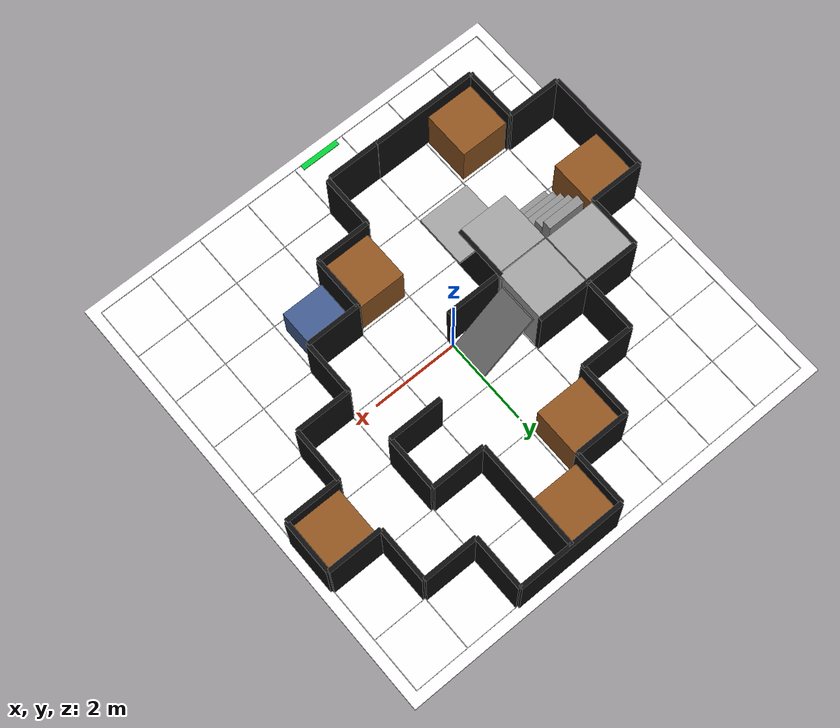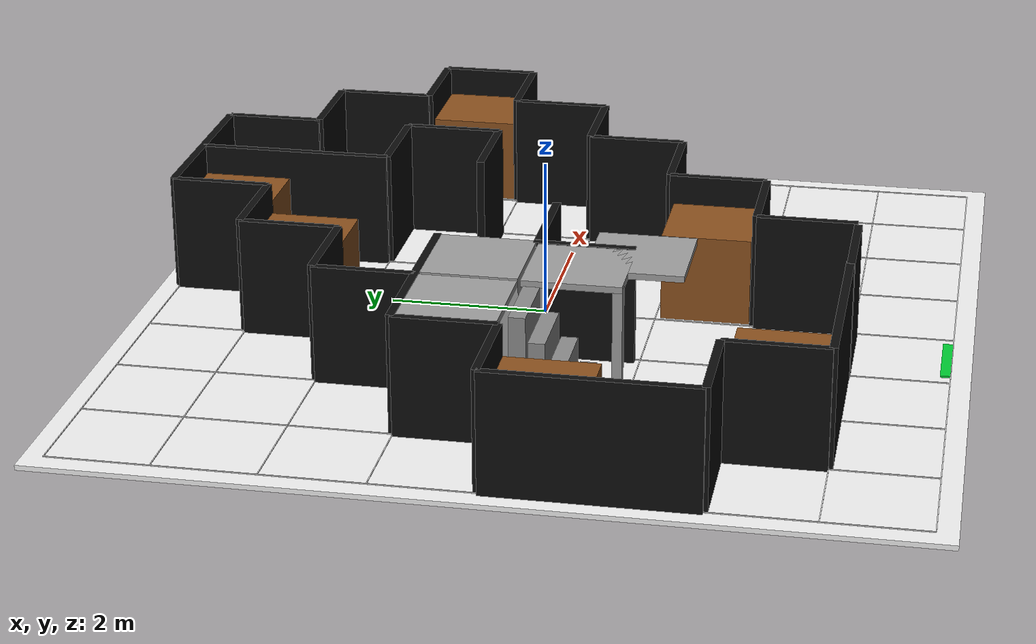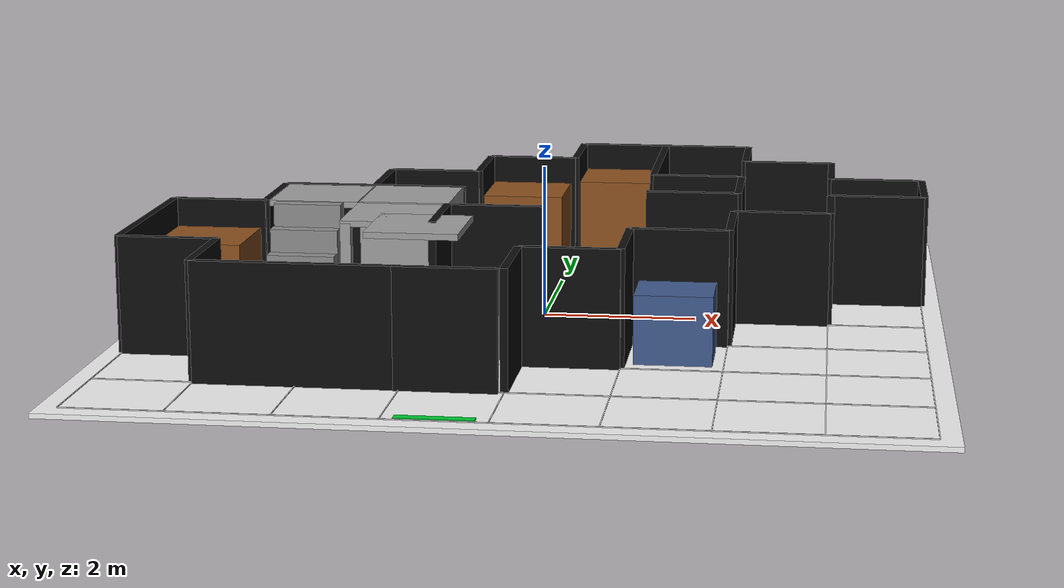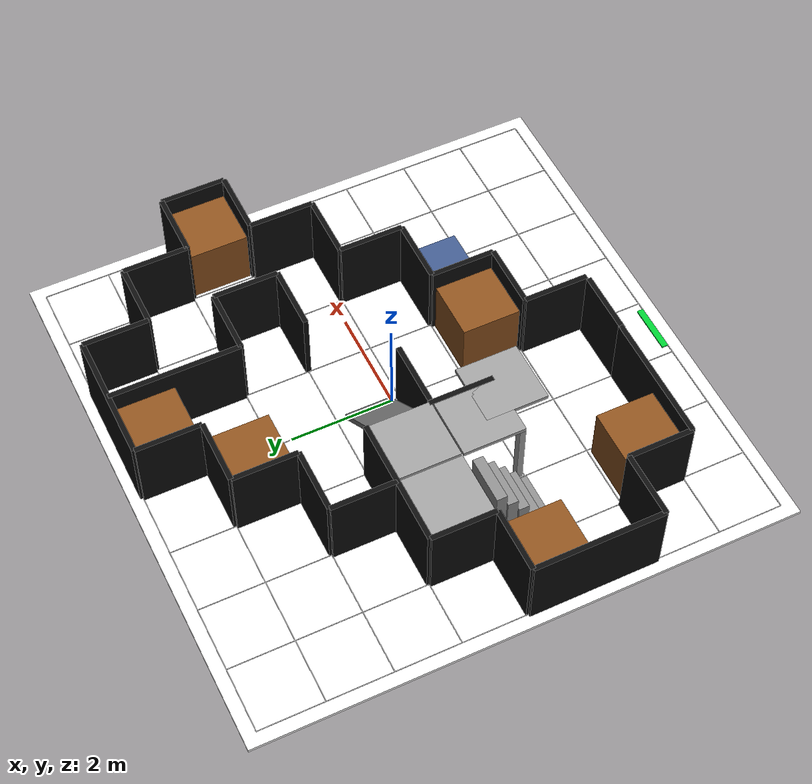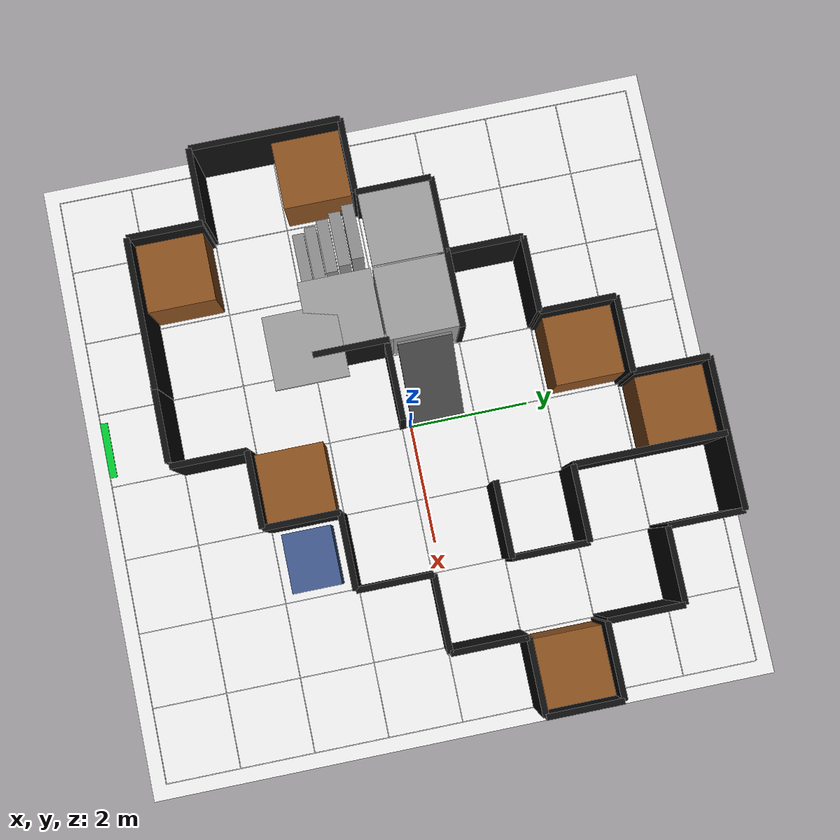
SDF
<sdf version="1.7">
 <world name="image_map_world">
  <model name="floor">
   <static>1</static>
   <pose>0.000000 -0.150000 -0.03125 0 -0 0</pose>
   <link name="link">
    <collision name="floor_collision"><geometry><box><size>10.5 10.5 0.0625</size></box></geometry></collision>
    <visual name="floor_visual">
     <geometry><box><size>10.5 10.5 0.0625</size></box></geometry>
     <material><ambient>0.95 0.95 0.95 1</ambient><diffuse>0.95 0.95 0.95 1</diffuse></material>
    </visual>
   </link>
  </model>
  <model name="grid_v_0">
   <static>1</static>
   <pose>-5.000000 -0.150000 0.0075 0 -0 0</pose>
   <link name="link">
    <visual name="grid_v_0_visual">
     <geometry><box><size>0.0125 10 0.0125</size></box></geometry>
     <material><ambient>0.82 0.82 0.82 1</ambient><diffuse>0.82 0.82 0.82 1</diffuse></material>
    </visual>
   </link>
  </model>
  <model name="grid_v_1">
   <static>1</static>
   <pose>-3.750000 -0.150000 0.0075 0 -0 0</pose>
   <link name="link">
    <visual name="grid_v_1_visual">
     <geometry><box><size>0.0125 10 0.0125</size></box></geometry>
     <material><ambient>0.82 0.82 0.82 1</ambient><diffuse>0.82 0.82 0.82 1</diffuse></material>
    </visual>
   </link>
  </model>
  <model name="grid_v_2">
   <static>1</static>
   <pose>-2.500000 -0.150000 0.0075 0 -0 0</pose>
   <link name="link">
    <visual name="grid_v_2_visual">
     <geometry><box><size>0.0125 10 0.0125</size></box></geometry>
     <material><ambient>0.82 0.82 0.82 1</ambient><diffuse>0.82 0.82 0.82 1</diffuse></material>
    </visual>
   </link>
  </model>
  <model name="grid_v_3">
   <static>1</static>
   <pose>-1.250000 -0.150000 0.0075 0 -0 0</pose>
   <link name="link">
    <visual name="grid_v_3_visual">
     <geometry><box><size>0.0125 10 0.0125</size></box></geometry>
     <material><ambient>0.82 0.82 0.82 1</ambient><diffuse>0.82 0.82 0.82 1</diffuse></material>
    </visual>
   </link>
  </model>
  <model name="grid_v_4">
   <static>1</static>
   <pose>0.000000 -0.150000 0.0075 0 -0 0</pose>
   <link name="link">
    <visual name="grid_v_4_visual">
     <geometry><box><size>0.0125 10 0.0125</size></box></geometry>
     <material><ambient>0.82 0.82 0.82 1</ambient><diffuse>0.82 0.82 0.82 1</diffuse></material>
    </visual>
   </link>
  </model>
  <model name="grid_v_5">
   <static>1</static>
   <pose>1.250000 -0.150000 0.0075 0 -0 0</pose>
   <link name="link">
    <visual name="grid_v_5_visual">
     <geometry><box><size>0.0125 10 0.0125</size></box></geometry>
     <material><ambient>0.82 0.82 0.82 1</ambient><diffuse>0.82 0.82 0.82 1</diffuse></material>
    </visual>
   </link>
  </model>
  <model name="grid_v_6">
   <static>1</static>
   <pose>2.500000 -0.150000 0.0075 0 -0 0</pose>
   <link name="link">
    <visual name="grid_v_6_visual">
     <geometry><box><size>0.0125 10 0.0125</size></box></geometry>
     <material><ambient>0.82 0.82 0.82 1</ambient><diffuse>0.82 0.82 0.82 1</diffuse></material>
    </visual>
   </link>
  </model>
  <model name="grid_v_7">
   <static>1</static>
   <pose>3.750000 -0.150000 0.0075 0 -0 0</pose>
   <link name="link">
    <visual name="grid_v_7_visual">
     <geometry><box><size>0.0125 10 0.0125</size></box></geometry>
     <material><ambient>0.82 0.82 0.82 1</ambient><diffuse>0.82 0.82 0.82 1</diffuse></material>
    </visual>
   </link>
  </model>
  <model name="grid_v_8">
   <static>1</static>
   <pose>5.000000 -0.150000 0.0075 0 -0 0</pose>
   <link name="link">
    <visual name="grid_v_8_visual">
     <geometry><box><size>0.0125 10 0.0125</size></box></geometry>
     <material><ambient>0.82 0.82 0.82 1</ambient><diffuse>0.82 0.82 0.82 1</diffuse></material>
    </visual>
   </link>
  </model>
  <model name="grid_h_0">
   <static>1</static>
   <pose>0.000000 4.850000 0.0075 0 -0 0</pose>
   <link name="link">
    <visual name="grid_h_0_visual">
     <geometry><box><size>10 0.0125 0.0125</size></box></geometry>
     <material><ambient>0.82 0.82 0.82 1</ambient><diffuse>0.82 0.82 0.82 1</diffuse></material>
    </visual>
   </link>
  </model>
  <model name="grid_h_1">
   <static>1</static>
   <pose>0.000000 3.600000 0.0075 0 -0 0</pose>
   <link name="link">
    <visual name="grid_h_1_visual">
     <geometry><box><size>10 0.0125 0.0125</size></box></geometry>
     <material><ambient>0.82 0.82 0.82 1</ambient><diffuse>0.82 0.82 0.82 1</diffuse></material>
    </visual>
   </link>
  </model>
  <model name="grid_h_2">
   <static>1</static>
   <pose>0.000000 2.350000 0.0075 0 -0 0</pose>
   <link name="link">
    <visual name="grid_h_2_visual">
     <geometry><box><size>10 0.0125 0.0125</size></box></geometry>
     <material><ambient>0.82 0.82 0.82 1</ambient><diffuse>0.82 0.82 0.82 1</diffuse></material>
    </visual>
   </link>
  </model>
  <model name="grid_h_3">
   <static>1</static>
   <pose>0.000000 1.100000 0.0075 0 -0 0</pose>
   <link name="link">
    <visual name="grid_h_3_visual">
     <geometry><box><size>10 0.0125 0.0125</size></box></geometry>
     <material><ambient>0.82 0.82 0.82 1</ambient><diffuse>0.82 0.82 0.82 1</diffuse></material>
    </visual>
   </link>
  </model>
  <model name="grid_h_4">
   <static>1</static>
   <pose>0.000000 -0.150000 0.0075 0 -0 0</pose>
   <link name="link">
    <visual name="grid_h_4_visual">
     <geometry><box><size>10 0.0125 0.0125</size></box></geometry>
     <material><ambient>0.82 0.82 0.82 1</ambient><diffuse>0.82 0.82 0.82 1</diffuse></material>
    </visual>
   </link>
  </model>
  <model name="grid_h_5">
   <static>1</static>
   <pose>0.000000 -1.400000 0.0075 0 -0 0</pose>
   <link name="link">
    <visual name="grid_h_5_visual">
     <geometry><box><size>10 0.0125 0.0125</size></box></geometry>
     <material><ambient>0.82 0.82 0.82 1</ambient><diffuse>0.82 0.82 0.82 1</diffuse></material>
    </visual>
   </link>
  </model>
  <model name="grid_h_6">
   <static>1</static>
   <pose>0.000000 -2.650000 0.0075 0 -0 0</pose>
   <link name="link">
    <visual name="grid_h_6_visual">
     <geometry><box><size>10 0.0125 0.0125</size></box></geometry>
     <material><ambient>0.82 0.82 0.82 1</ambient><diffuse>0.82 0.82 0.82 1</diffuse></material>
    </visual>
   </link>
  </model>
  <model name="grid_h_7">
   <static>1</static>
   <pose>0.000000 -3.900000 0.0075 0 -0 0</pose>
   <link name="link">
    <visual name="grid_h_7_visual">
     <geometry><box><size>10 0.0125 0.0125</size></box></geometry>
     <material><ambient>0.82 0.82 0.82 1</ambient><diffuse>0.82 0.82 0.82 1</diffuse></material>
    </visual>
   </link>
  </model>
  <model name="grid_h_8">
   <static>1</static>
   <pose>0.000000 -5.150000 0.0075 0 -0 0</pose>
   <link name="link">
    <visual name="grid_h_8_visual">
     <geometry><box><size>10 0.0125 0.0125</size></box></geometry>
     <material><ambient>0.82 0.82 0.82 1</ambient><diffuse>0.82 0.82 0.82 1</diffuse></material>
    </visual>
   </link>
  </model>
  <model name="wall_h_01">
   <static>1</static>
   <pose>1.250000 4.850000 0.75 0 -0 0</pose>
   <link name="link">
    <collision name="wall_h_01_collision"><geometry><box><size>2.5 0.1 1.5</size></box></geometry></collision>
    <visual name="wall_h_01_visual">
     <geometry><box><size>2.5 0.1 1.5</size></box></geometry>
     <material><ambient>0.05 0.05 0.05 1</ambient><diffuse>0.05 0.05 0.05 1</diffuse></material>
    </visual>
   </link>
  </model>
  <model name="wall_h_02">
   <static>1</static>
   <pose>-0.625000 3.600000 0.75 0 -0 0</pose>
   <link name="link">
    <collision name="wall_h_02_collision"><geometry><box><size>1.25 0.1 1.5</size></box></geometry></collision>
    <visual name="wall_h_02_visual">
     <geometry><box><size>1.25 0.1 1.5</size></box></geometry>
     <material><ambient>0.05 0.05 0.05 1</ambient><diffuse>0.05 0.05 0.05 1</diffuse></material>
    </visual>
   </link>
  </model>
  <model name="wall_h_03">
   <static>1</static>
   <pose>3.125000 3.600000 0.75 0 -0 0</pose>
   <link name="link">
    <collision name="wall_h_03_collision"><geometry><box><size>1.25 0.1 1.5</size></box></geometry></collision>
    <visual name="wall_h_03_visual">
     <geometry><box><size>1.25 0.1 1.5</size></box></geometry>
     <material><ambient>0.05 0.05 0.05 1</ambient><diffuse>0.05 0.05 0.05 1</diffuse></material>
    </visual>
   </link>
  </model>
  <model name="wall_h_04">
   <static>1</static>
   <pose>-1.875000 2.350000 0.75 0 -0 0</pose>
   <link name="link">
    <collision name="wall_h_04_collision"><geometry><box><size>1.25 0.1 1.5</size></box></geometry></collision>
    <visual name="wall_h_04_visual">
     <geometry><box><size>1.25 0.1 1.5</size></box></geometry>
     <material><ambient>0.05 0.05 0.05 1</ambient><diffuse>0.05 0.05 0.05 1</diffuse></material>
    </visual>
   </link>
  </model>
  <model name="wall_h_05">
   <static>1</static>
   <pose>1.875000 2.350000 0.75 0 -0 0</pose>
   <link name="link">
    <collision name="wall_h_05_collision"><geometry><box><size>1.25 0.1 1.5</size></box></geometry></collision>
    <visual name="wall_h_05_visual">
     <geometry><box><size>1.25 0.1 1.5</size></box></geometry>
     <material><ambient>0.05 0.05 0.05 1</ambient><diffuse>0.05 0.05 0.05 1</diffuse></material>
    </visual>
   </link>
  </model>
  <model name="wall_h_06">
   <static>1</static>
   <pose>4.375000 2.350000 0.75 0 -0 0</pose>
   <link name="link">
    <collision name="wall_h_06_collision"><geometry><box><size>1.25 0.1 1.5</size></box></geometry></collision>
    <visual name="wall_h_06_visual">
     <geometry><box><size>1.25 0.1 1.5</size></box></geometry>
     <material><ambient>0.05 0.05 0.05 1</ambient><diffuse>0.05 0.05 0.05 1</diffuse></material>
    </visual>
   </link>
  </model>
  <model name="wall_h_07">
   <static>1</static>
   <pose>-2.500000 1.100000 0.75 0 -0 0</pose>
   <link name="link">
    <collision name="wall_h_07_collision"><geometry><box><size>2.5 0.1 1.5</size></box></geometry></collision>
    <visual name="wall_h_07_visual">
     <geometry><box><size>2.5 0.1 1.5</size></box></geometry>
     <material><ambient>0.05 0.05 0.05 1</ambient><diffuse>0.05 0.05 0.05 1</diffuse></material>
    </visual>
   </link>
  </model>
  <model name="wall_h_08">
   <static>1</static>
   <pose>1.875000 1.100000 0.75 0 -0 0</pose>
   <link name="link">
    <collision name="wall_h_08_collision"><geometry><box><size>1.25 0.1 1.5</size></box></geometry></collision>
    <visual name="wall_h_08_visual">
     <geometry><box><size>1.25 0.1 1.5</size></box></geometry>
     <material><ambient>0.05 0.05 0.05 1</ambient><diffuse>0.05 0.05 0.05 1</diffuse></material>
    </visual>
   </link>
  </model>
  <model name="wall_h_09">
   <static>1</static>
   <pose>4.375000 1.100000 0.75 0 -0 0</pose>
   <link name="link">
    <collision name="wall_h_09_collision"><geometry><box><size>1.25 0.1 1.5</size></box></geometry></collision>
    <visual name="wall_h_09_visual">
     <geometry><box><size>1.25 0.1 1.5</size></box></geometry>
     <material><ambient>0.05 0.05 0.05 1</ambient><diffuse>0.05 0.05 0.05 1</diffuse></material>
    </visual>
   </link>
  </model>
  <model name="wall_h_10">
   <static>1</static>
   <pose>-4.375000 -0.150000 0.75 0 -0 0</pose>
   <link name="link">
    <collision name="wall_h_10_collision"><geometry><box><size>1.25 0.1 1.5</size></box></geometry></collision>
    <visual name="wall_h_10_visual">
     <geometry><box><size>1.25 0.1 1.5</size></box></geometry>
     <material><ambient>0.05 0.05 0.05 1</ambient><diffuse>0.05 0.05 0.05 1</diffuse></material>
    </visual>
   </link>
  </model>
  <model name="wall_h_11">
   <static>1</static>
   <pose>3.125000 -0.150000 0.75 0 -0 0</pose>
   <link name="link">
    <collision name="wall_h_11_collision"><geometry><box><size>1.25 0.1 1.5</size></box></geometry></collision>
    <visual name="wall_h_11_visual">
     <geometry><box><size>1.25 0.1 1.5</size></box></geometry>
     <material><ambient>0.05 0.05 0.05 1</ambient><diffuse>0.05 0.05 0.05 1</diffuse></material>
    </visual>
   </link>
  </model>
  <model name="wall_h_12">
   <static>1</static>
   <pose>1.875000 -1.400000 0.75 0 -0 0</pose>
   <link name="link">
    <collision name="wall_h_12_collision"><geometry><box><size>1.25 0.1 1.5</size></box></geometry></collision>
    <visual name="wall_h_12_visual">
     <geometry><box><size>1.25 0.1 1.5</size></box></geometry>
     <material><ambient>0.05 0.05 0.05 1</ambient><diffuse>0.05 0.05 0.05 1</diffuse></material>
    </visual>
   </link>
  </model>
  <model name="wall_h_13">
   <static>1</static>
   <pose>-4.375000 -2.650000 0.75 0 -0 0</pose>
   <link name="link">
    <collision name="wall_h_13_collision"><geometry><box><size>1.25 0.1 1.5</size></box></geometry></collision>
    <visual name="wall_h_13_visual">
     <geometry><box><size>1.25 0.1 1.5</size></box></geometry>
     <material><ambient>0.05 0.05 0.05 1</ambient><diffuse>0.05 0.05 0.05 1</diffuse></material>
    </visual>
   </link>
  </model>
  <model name="wall_h_14">
   <static>1</static>
   <pose>0.625000 -2.650000 0.75 0 -0 0</pose>
   <link name="link">
    <collision name="wall_h_14_collision"><geometry><box><size>1.25 0.1 1.5</size></box></geometry></collision>
    <visual name="wall_h_14_visual">
     <geometry><box><size>1.25 0.1 1.5</size></box></geometry>
     <material><ambient>0.05 0.05 0.05 1</ambient><diffuse>0.05 0.05 0.05 1</diffuse></material>
    </visual>
   </link>
  </model>
  <model name="wall_h_15">
   <static>1</static>
   <pose>-2.500000 -3.900000 0.75 0 -0 0</pose>
   <link name="link">
    <collision name="wall_h_15_collision"><geometry><box><size>2.5 0.1 1.5</size></box></geometry></collision>
    <visual name="wall_h_15_visual">
     <geometry><box><size>2.5 0.1 1.5</size></box></geometry>
     <material><ambient>0.05 0.05 0.05 1</ambient><diffuse>0.05 0.05 0.05 1</diffuse></material>
    </visual>
   </link>
  </model>
  <model name="wall_v_01">
   <static>1</static>
   <pose>0.000000 4.225000 0.75 0 -0 0</pose>
   <link name="link">
    <collision name="wall_v_01_collision"><geometry><box><size>0.1 1.25 1.5</size></box></geometry></collision>
    <visual name="wall_v_01_visual">
     <geometry><box><size>0.1 1.25 1.5</size></box></geometry>
     <material><ambient>0.05 0.05 0.05 1</ambient><diffuse>0.05 0.05 0.05 1</diffuse></material>
    </visual>
   </link>
  </model>
  <model name="wall_v_02">
   <static>1</static>
   <pose>1.250000 3.600000 0.75 0 -0 0</pose>
   <link name="link">
    <collision name="wall_v_02_collision"><geometry><box><size>0.1 2.5 1.5</size></box></geometry></collision>
    <visual name="wall_v_02_visual">
     <geometry><box><size>0.1 2.5 1.5</size></box></geometry>
     <material><ambient>0.05 0.05 0.05 1</ambient><diffuse>0.05 0.05 0.05 1</diffuse></material>
    </visual>
   </link>
  </model>
  <model name="wall_v_03">
   <static>1</static>
   <pose>2.500000 4.225000 0.75 0 -0 0</pose>
   <link name="link">
    <collision name="wall_v_03_collision"><geometry><box><size>0.1 1.25 1.5</size></box></geometry></collision>
    <visual name="wall_v_03_visual">
     <geometry><box><size>0.1 1.25 1.5</size></box></geometry>
     <material><ambient>0.05 0.05 0.05 1</ambient><diffuse>0.05 0.05 0.05 1</diffuse></material>
    </visual>
   </link>
  </model>
  <model name="wall_v_04">
   <static>1</static>
   <pose>-1.250000 2.975000 0.75 0 -0 0</pose>
   <link name="link">
    <collision name="wall_v_04_collision"><geometry><box><size>0.1 1.25 1.5</size></box></geometry></collision>
    <visual name="wall_v_04_visual">
     <geometry><box><size>0.1 1.25 1.5</size></box></geometry>
     <material><ambient>0.05 0.05 0.05 1</ambient><diffuse>0.05 0.05 0.05 1</diffuse></material>
    </visual>
   </link>
  </model>
  <model name="wall_v_05">
   <static>1</static>
   <pose>3.750000 2.975000 0.75 0 -0 0</pose>
   <link name="link">
    <collision name="wall_v_05_collision"><geometry><box><size>0.1 1.25 1.5</size></box></geometry></collision>
    <visual name="wall_v_05_visual">
     <geometry><box><size>0.1 1.25 1.5</size></box></geometry>
     <material><ambient>0.05 0.05 0.05 1</ambient><diffuse>0.05 0.05 0.05 1</diffuse></material>
    </visual>
   </link>
  </model>
  <model name="wall_v_06">
   <static>1</static>
   <pose>3.750000 0.475000 0.75 0 -0 0</pose>
   <link name="link">
    <collision name="wall_v_06_collision"><geometry><box><size>0.1 1.25 1.5</size></box></geometry></collision>
    <visual name="wall_v_06_visual">
     <geometry><box><size>0.1 1.25 1.5</size></box></geometry>
     <material><ambient>0.05 0.05 0.05 1</ambient><diffuse>0.05 0.05 0.05 1</diffuse></material>
    </visual>
   </link>
  </model>
  <model name="wall_v_07">
   <static>1</static>
   <pose>5.000000 1.725000 0.75 0 -0 0</pose>
   <link name="link">
    <collision name="wall_v_07_collision"><geometry><box><size>0.1 1.25 1.5</size></box></geometry></collision>
    <visual name="wall_v_07_visual">
     <geometry><box><size>0.1 1.25 1.5</size></box></geometry>
     <material><ambient>0.05 0.05 0.05 1</ambient><diffuse>0.05 0.05 0.05 1</diffuse></material>
    </visual>
   </link>
  </model>
  <model name="wall_v_08">
   <static>1</static>
   <pose>-2.500000 1.725000 0.75 0 -0 0</pose>
   <link name="link">
    <collision name="wall_v_08_collision"><geometry><box><size>0.1 1.25 1.5</size></box></geometry></collision>
    <visual name="wall_v_08_visual">
     <geometry><box><size>0.1 1.25 1.5</size></box></geometry>
     <material><ambient>0.05 0.05 0.05 1</ambient><diffuse>0.05 0.05 0.05 1</diffuse></material>
    </visual>
   </link>
  </model>
  <model name="wall_v_09">
   <static>1</static>
   <pose>-5.000000 -1.400000 0.75 0 -0 0</pose>
   <link name="link">
    <collision name="wall_v_09_collision"><geometry><box><size>0.1 2.5 1.5</size></box></geometry></collision>
    <visual name="wall_v_09_visual">
     <geometry><box><size>0.1 2.5 1.5</size></box></geometry>
     <material><ambient>0.05 0.05 0.05 1</ambient><diffuse>0.05 0.05 0.05 1</diffuse></material>
    </visual>
   </link>
  </model>
  <model name="wall_v_10">
   <static>1</static>
   <pose>-3.750000 0.475000 0.75 0 -0 0</pose>
   <link name="link">
    <collision name="wall_v_10_collision"><geometry><box><size>0.1 1.25 1.5</size></box></geometry></collision>
    <visual name="wall_v_10_visual">
     <geometry><box><size>0.1 1.25 1.5</size></box></geometry>
     <material><ambient>0.05 0.05 0.05 1</ambient><diffuse>0.05 0.05 0.05 1</diffuse></material>
    </visual>
   </link>
  </model>
  <model name="wall_v_11">
   <static>1</static>
   <pose>2.500000 1.725000 0.75 0 -0 0</pose>
   <link name="link">
    <collision name="wall_v_11_collision"><geometry><box><size>0.1 1.25 1.5</size></box></geometry></collision>
    <visual name="wall_v_11_visual">
     <geometry><box><size>0.1 1.25 1.5</size></box></geometry>
     <material><ambient>0.05 0.05 0.05 1</ambient><diffuse>0.05 0.05 0.05 1</diffuse></material>
    </visual>
   </link>
  </model>
  <model name="wall_v_12">
   <static>1</static>
   <pose>2.500000 -0.775000 0.75 0 -0 0</pose>
   <link name="link">
    <collision name="wall_v_12_collision"><geometry><box><size>0.1 1.25 1.5</size></box></geometry></collision>
    <visual name="wall_v_12_visual">
     <geometry><box><size>0.1 1.25 1.5</size></box></geometry>
     <material><ambient>0.05 0.05 0.05 1</ambient><diffuse>0.05 0.05 0.05 1</diffuse></material>
    </visual>
   </link>
  </model>
  <model name="wall_v_13">
   <static>1</static>
   <pose>-3.750000 -3.275000 0.75 0 -0 0</pose>
   <link name="link">
    <collision name="wall_v_13_collision"><geometry><box><size>0.1 1.25 1.5</size></box></geometry></collision>
    <visual name="wall_v_13_visual">
     <geometry><box><size>0.1 1.25 1.5</size></box></geometry>
     <material><ambient>0.05 0.05 0.05 1</ambient><diffuse>0.05 0.05 0.05 1</diffuse></material>
    </visual>
   </link>
  </model>
  <model name="wall_v_14">
   <static>1</static>
   <pose>0.000000 -3.275000 0.75 0 -0 0</pose>
   <link name="link">
    <collision name="wall_v_14_collision"><geometry><box><size>0.1 1.25 1.5</size></box></geometry></collision>
    <visual name="wall_v_14_visual">
     <geometry><box><size>0.1 1.25 1.5</size></box></geometry>
     <material><ambient>0.05 0.05 0.05 1</ambient><diffuse>0.05 0.05 0.05 1</diffuse></material>
    </visual>
   </link>
  </model>
  <model name="wall_v_15">
   <static>1</static>
   <pose>1.250000 -2.025000 0.75 0 -0 0</pose>
   <link name="link">
    <collision name="wall_v_15_collision"><geometry><box><size>0.1 1.25 1.5</size></box></geometry></collision>
    <visual name="wall_v_15_visual">
     <geometry><box><size>0.1 1.25 1.5</size></box></geometry>
     <material><ambient>0.05 0.05 0.05 1</ambient><diffuse>0.05 0.05 0.05 1</diffuse></material>
    </visual>
   </link>
  </model>
  <model name="box_1">
   <static>1</static>
   <pose>0.625000 4.225000 0.5625 0 -0 0</pose>
   <link name="link">
    <collision name="box_1_collision"><geometry><box><size>1.125 1.125 1.125</size></box></geometry></collision>
    <visual name="box_1_visual">
     <geometry><box><size>1.125 1.125 1.125</size></box></geometry>
     <material><ambient>0.55 0.32 0.12 1</ambient><diffuse>0.55 0.32 0.12 1</diffuse></material>
    </visual>
   </link>
  </model>
  <model name="box_2">
   <static>1</static>
   <pose>-0.625000 2.975000 0.5625 0 -0 0</pose>
   <link name="link">
    <collision name="box_2_collision"><geometry><box><size>1.125 1.125 1.125</size></box></geometry></collision>
    <visual name="box_2_visual">
     <geometry><box><size>1.125 1.125 1.125</size></box></geometry>
     <material><ambient>0.55 0.32 0.12 1</ambient><diffuse>0.55 0.32 0.12 1</diffuse></material>
    </visual>
   </link>
  </model>
  <model name="box_3">
   <static>1</static>
   <pose>4.375000 1.725000 0.5625 0 -0 0</pose>
   <link name="link">
    <collision name="box_3_collision"><geometry><box><size>1.125 1.125 1.125</size></box></geometry></collision>
    <visual name="box_3_visual">
     <geometry><box><size>1.125 1.125 1.125</size></box></geometry>
     <material><ambient>0.55 0.32 0.12 1</ambient><diffuse>0.55 0.32 0.12 1</diffuse></material>
    </visual>
   </link>
  </model>
  <model name="box_4">
   <static>1</static>
   <pose>-4.375000 -0.775000 0.5625 0 -0 0</pose>
   <link name="link">
    <collision name="box_4_collision"><geometry><box><size>1.125 1.125 1.125</size></box></geometry></collision>
    <visual name="box_4_visual">
     <geometry><box><size>1.125 1.125 1.125</size></box></geometry>
     <material><ambient>0.55 0.32 0.12 1</ambient><diffuse>0.55 0.32 0.12 1</diffuse></material>
    </visual>
   </link>
  </model>
  <model name="box_5">
   <static>1</static>
   <pose>0.625000 -2.025000 0.5625 0 -0 0</pose>
   <link name="link">
    <collision name="box_5_collision"><geometry><box><size>1.125 1.125 1.125</size></box></geometry></collision>
    <visual name="box_5_visual">
     <geometry><box><size>1.125 1.125 1.125</size></box></geometry>
     <material><ambient>0.55 0.32 0.12 1</ambient><diffuse>0.55 0.32 0.12 1</diffuse></material>
    </visual>
   </link>
  </model>
  <model name="box_6">
   <static>1</static>
   <pose>-3.125000 -3.275000 0.5625 0 -0 0</pose>
   <link name="link">
    <collision name="box_6_collision"><geometry><box><size>1.125 1.125 1.125</size></box></geometry></collision>
    <visual name="box_6_visual">
     <geometry><box><size>1.125 1.125 1.125</size></box></geometry>
     <material><ambient>0.55 0.32 0.12 1</ambient><diffuse>0.55 0.32 0.12 1</diffuse></material>
    </visual>
   </link>
  </model>
  <model name="operation_table">
   <static>1</static>
   <pose>1.875000 -2.025000 0.4375 0 -0 0</pose>
   <link name="link">
    <collision name="operation_table_collision">
     <geometry><box><size>0.975 0.8125 0.875</size></box></geometry>
    </collision>
    <visual name="operation_table_visual">
     <geometry><box><size>0.975 0.8125 0.875</size></box></geometry>
     <material><ambient>0.25 0.35 0.55 1</ambient><diffuse>0.25 0.35 0.55 1</diffuse></material>
    </visual>
   </link>
  </model>
  <model name="ramp_left_mid">
   <static>1</static>
   <pose>-0.625000 0.475000 0.604125 0 -0.726642 -3.14159</pose>
   <link name="link">
    <collision name="ramp_left_mid_collision">
     <geometry><box><size>1.6875 0.900002 0.1</size></box></geometry>
    </collision>
    <visual name="ramp_left_mid_visual">
     <geometry><box><size>1.6875 0.900002 0.1</size></box></geometry>
     <material><ambient>0.45 0.45 0.45 1</ambient><diffuse>0.45 0.45 0.45 1</diffuse></material>
    </visual>
   </link>
  </model>
  <model name="stairs_up_step_1">
   <static>1</static>
   <pose>-3.125000 -1.225000 0.15 0 -0 1.5708</pose>
   <link name="link">
    <collision name="stairs_up_step_1_collision">
     <geometry><box><size>0.2 0.900001 0.3</size></box></geometry>
    </collision>
    <visual name="stairs_up_step_1_visual">
     <geometry><box><size>0.2 0.899994 0.3</size></box></geometry>
     <material><ambient>0.55 0.55 0.55 1</ambient><diffuse>0.55 0.55 0.55 1</diffuse></material>
    </visual>
   </link>
  </model>
  <model name="stairs_up_step_2">
   <static>1</static>
   <pose>-3.125000 -1.000000 0.3 0 -0 1.5708</pose>
   <link name="link">
    <collision name="stairs_up_step_2_collision">
     <geometry><box><size>0.2 0.900003 0.6</size></box></geometry>
    </collision>
    <visual name="stairs_up_step_2_visual">
     <geometry><box><size>0.2 0.900003 0.6</size></box></geometry>
     <material><ambient>0.55 0.55 0.55 1</ambient><diffuse>0.55 0.55 0.55 1</diffuse></material>
    </visual>
   </link>
  </model>
  <model name="stairs_up_step_3">
   <static>1</static>
   <pose>-3.125000 -0.775000 0.45 0 -0 1.5708</pose>
   <link name="link">
    <collision name="stairs_up_step_3_collision">
     <geometry><box><size>0.2 0.900002 0.9</size></box></geometry>
    </collision>
    <visual name="stairs_up_step_3_visual">
     <geometry><box><size>0.2 0.900002 0.9</size></box></geometry>
     <material><ambient>0.55 0.55 0.55 1</ambient><diffuse>0.55 0.55 0.55 1</diffuse></material>
    </visual>
   </link>
  </model>
  <model name="stairs_up_step_4">
   <static>1</static>
   <pose>-3.125000 -0.550000 0.6 0 -0 1.5708</pose>
   <link name="link">
    <collision name="stairs_up_step_4_collision">
     <geometry><box><size>0.2 0.899998 1.2</size></box></geometry>
    </collision>
    <visual name="stairs_up_step_4_visual">
     <geometry><box><size>0.2 0.899998 1.2</size></box></geometry>
     <material><ambient>0.55 0.55 0.55 1</ambient><diffuse>0.55 0.55 0.55 1</diffuse></material>
    </visual>
   </link>
  </model>
  <model name="stairs_up_step_5">
   <static>1</static>
   <pose>-3.125000 -0.325000 0.75 0 -0 1.5708</pose>
   <link name="link">
    <collision name="stairs_up_step_5_collision">
     <geometry><box><size>0.2 0.899998 1.5</size></box></geometry>
    </collision>
    <visual name="stairs_up_step_5_visual">
     <geometry><box><size>0.2 0.899998 1.5</size></box></geometry>
     <material><ambient>0.55 0.55 0.55 1</ambient><diffuse>0.55 0.55 0.55 1</diffuse></material>
    </visual>
   </link>
  </model>
  <model name="second_floor_2">
   <static>1</static>
   <pose>-1.875000 0.475000 0.75 0 -0 0</pose>
   <link name="link">
    <collision name="second_floor_2_collision">
     <geometry><box><size>1.2 1.2 1.49999</size></box></geometry>
    </collision>
    <visual name="second_floor_2_visual">
     <geometry><box><size>1.2 1.2 1.49999</size></box></geometry>
     <material><ambient>0.62 0.62 0.62 1</ambient><diffuse>0.62 0.62 0.62 1</diffuse></material>
    </visual>
   </link>
  </model>
  <model name="door_marker">
   <static>1</static>
   <pose>-0.625000 -5.087500 0.01375 0 -0 0</pose>
   <link name="link">
    <visual name="door_marker_visual">
     <geometry><box><size>0.9375 0.125 0.025</size></box></geometry>
     <material><ambient>0 0.8 0.2 1</ambient><diffuse>0 0.8 0.2 1</diffuse></material>
    </visual>
   </link>
  </model>
  <model name="wall_h_14_clone">
   <static>1</static>
   <pose>-0.690771 -3.908340 0.75 0 -0 0</pose>
   <link name="link">
    <collision name="wall_h_14_collision"><geometry><box><size>1.25 0.1 1.5</size></box></geometry></collision>
    <visual name="wall_h_14_visual">
     <geometry><box><size>1.25 0.1 1.5</size></box></geometry>
     <material><ambient>0.05 0.05 0.05 1</ambient><diffuse>0.05 0.05 0.05 1</diffuse></material>
    </visual>
   </link>
  </model>
  <model name="second_floor_2_clone">
   <static>1</static>
   <pose>-3.106860 0.478220 1.44981 0 -0 0</pose>
   <link name="link">
    <collision name="second_floor_2_collision">
     <geometry><box><size>1.2 1.2 0.078145</size></box></geometry>
    </collision>
    <visual name="second_floor_2_visual">
     <geometry><box><size>1.2 1.2 0.078145</size></box></geometry>
     <material><ambient>0.62 0.62 0.62 1</ambient><diffuse>0.62 0.62 0.62 1</diffuse></material>
    </visual>
   </link>
  </model>
  <model name="second_floor_2_clone_0">
   <static>1</static>
   <pose>-1.885970 -0.756444 1.44981 0 -0 0</pose>
   <link name="link">
    <collision name="second_floor_2_collision">
     <geometry><box><size>1.2 1.2 0.078145</size></box></geometry>
    </collision>
    <visual name="second_floor_2_visual">
     <geometry><box><size>1.2 1.2 0.078145</size></box></geometry>
     <material><ambient>0.62 0.62 0.62 1</ambient><diffuse>0.62 0.62 0.62 1</diffuse></material>
    </visual>
   </link>
  </model>
  <model name="second_floor_2_clone_0_clone">
   <static>1</static>
   <pose>-1.442360 -1.423060 1.44981 0 -0 0</pose>
   <link name="link">
    <collision name="second_floor_2_collision">
     <geometry><box><size>1.2 1.2 0.078145</size></box></geometry>
    </collision>
    <visual name="second_floor_2_visual">
     <geometry><box><size>1.2 1.2 0.078145</size></box></geometry>
     <material><ambient>0.62 0.62 0.62 1</ambient><diffuse>0.62 0.62 0.62 1</diffuse></material>
    </visual>
   </link>
  </model>
  <model name="second_floor_2_clone_0_clone_clone">
   <static>1</static>
   <pose>-2.413570 -1.299760 0.687578 0 -0 0</pose>
   <link name="link">
    <collision name="second_floor_2_collision">
     <geometry><box><size>0.137061 0.119094 1.52945</size></box></geometry>
    </collision>
    <visual name="second_floor_2_visual">
     <geometry><box><size>0.137061 0.119094 1.52945</size></box></geometry>
     <material><ambient>0.62 0.62 0.62 1</ambient><diffuse>0.62 0.62 0.62 1</diffuse></material>
    </visual>
   </link>
  </model>
  <model name="second_floor_2_clone_0_clone_clone_0">
   <static>1</static>
   <pose>-1.336640 -0.219661 0.687578 0 -0 0</pose>
   <link name="link">
    <collision name="second_floor_2_collision">
     <geometry><box><size>0.137061 0.119094 1.52945</size></box></geometry>
    </collision>
    <visual name="second_floor_2_visual">
     <geometry><box><size>0.137061 0.119094 1.52945</size></box></geometry>
     <material><ambient>0.62 0.62 0.62 1</ambient><diffuse>0.62 0.62 0.62 1</diffuse></material>
    </visual>
   </link>
  </model>
  <model name="second_floor_2_clone_0_clone_clone_1">
   <static>1</static>
   <pose>-1.321390 -0.093215 0.687578 0 -0 0</pose>
   <link name="link">
    <collision name="second_floor_2_collision">
     <geometry><box><size>0.137061 0.119094 1.52945</size></box></geometry>
    </collision>
    <visual name="second_floor_2_visual">
     <geometry><box><size>0.137061 0.119094 1.52945</size></box></geometry>
     <material><ambient>0.62 0.62 0.62 1</ambient><diffuse>0.62 0.62 0.62 1</diffuse></material>
    </visual>
   </link>
  </model>
  <model name="wall_v_13_clone">
   <static>1</static>
   <pose>-1.289860 -0.713183 0.75 0 -0 0</pose>
   <link name="link">
    <collision name="wall_v_13_collision"><geometry><box><size>0.1 1.25 1.5</size></box></geometry></collision>
    <visual name="wall_v_13_visual">
     <geometry><box><size>0.1 1.25 1.5</size></box></geometry>
     <material><ambient>0.05 0.05 0.05 1</ambient><diffuse>0.05 0.05 0.05 1</diffuse></material>
    </visual>
   </link>
  </model>
  <model name="wall_h_08_clone_clone_0">
   <static>1</static>
   <pose>-0.606403 -0.137762 0.75 0 -0 0</pose>
   <link name="link">
    <collision name="wall_h_08_collision"><geometry><box><size>1.25 0.1 1.5</size></box></geometry></collision>
    <visual name="wall_h_08_visual">
     <geometry><box><size>1.25 0.1 1.5</size></box></geometry>
     <material><ambient>0.05 0.05 0.05 1</ambient><diffuse>0.05 0.05 0.05 1</diffuse></material>
    </visual>
   </link>
  </model>
 </world>
</sdf>
